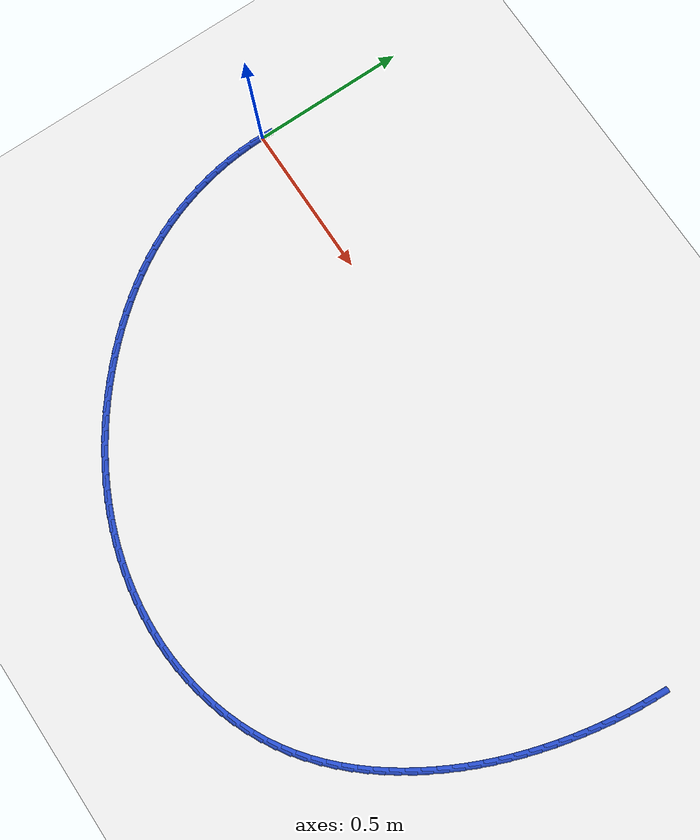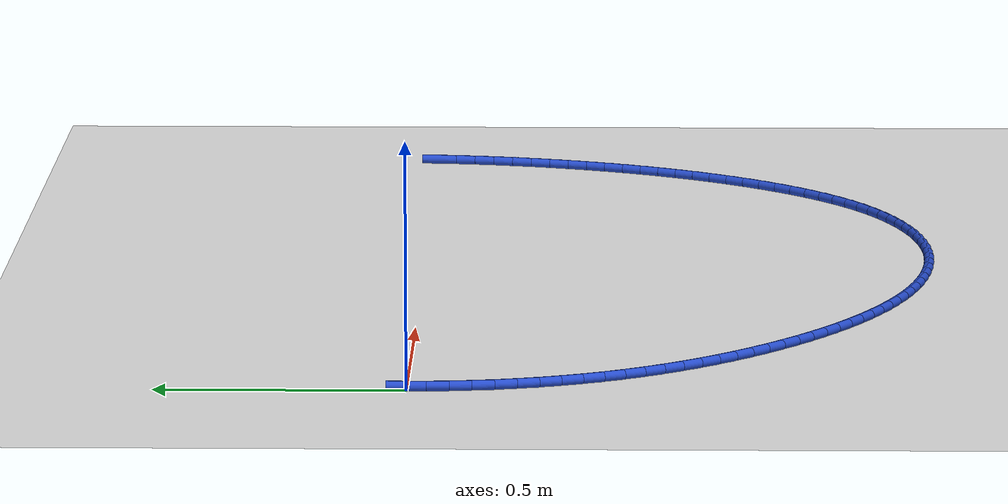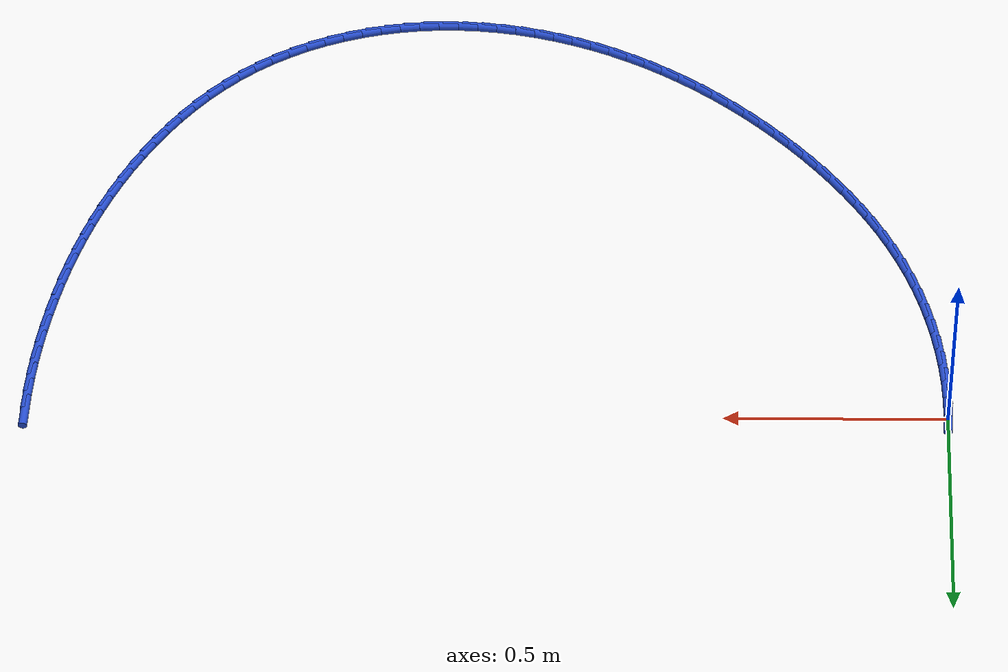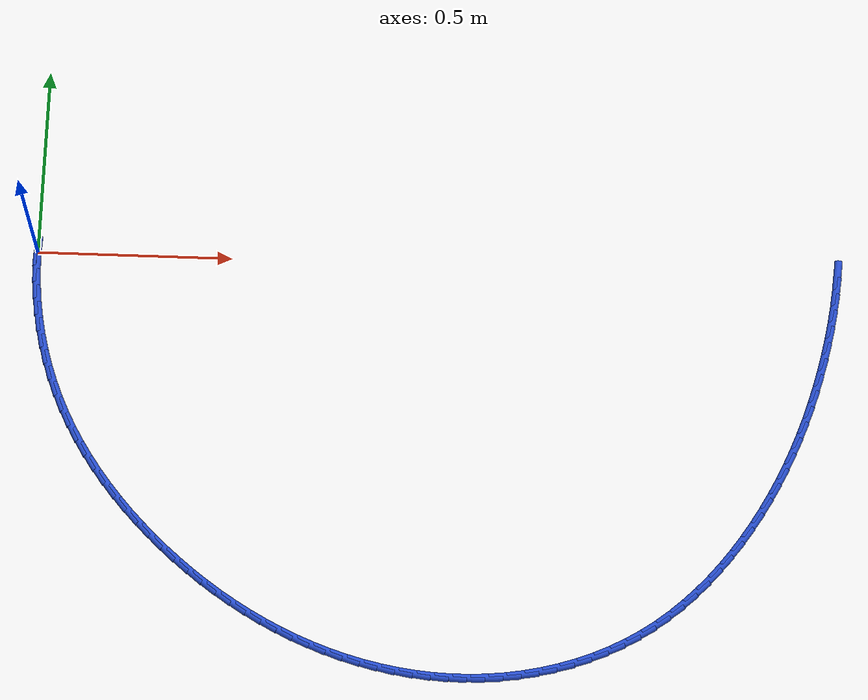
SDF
<sdf version="1.6">
 <world name="default">
  <model name="ground_plane">
   <static>1</static>
   <link name="link">
    <collision name="collision">
     <geometry><plane><normal>0 0 1</normal><size>100 100</size></plane></geometry>
     <surface><friction><ode><mu>100</mu><mu2>50</mu2></ode></friction></surface>
    </collision>
    <visual name="visual">
     <cast_shadows>0</cast_shadows>
     <geometry><plane><normal>0 0 1</normal><size>100 100</size></plane></geometry>
     <material>
      <script><uri>file://media/materials/scripts/gazebo.material</uri><name>Gazebo/WhiteGlow</name></script>
     </material>
    </visual>
   </link>
  </model>
  <model name="line">
   <link name="link_0">
    <pose>1.0408340855860843e-17 2.220446049250313e-16 0.01 0 1.57 1.5392410968493917</pose>
    <collision name="collision">
     <geometry><cylinder><radius>0.01</radius><length>0.08</length></cylinder></geometry>
    </collision>
    <visual name="visual">
     <material>
      <script><name>Gazebo/Blue</name><uri>file://media/materials/scripts/gazebo.material</uri></script>
     </material>
     <geometry><cylinder><radius>0.01</radius><length>0.08</length></cylinder></geometry>
    </visual>
   </link>
   <link name="link_76">
    <pose>2.049236232297777 0.0007225016036778772 0.01 0 1.57 1.4878228461478593</pose>
    <collision name="collision">
     <geometry><cylinder><radius>0.01</radius><length>0.08</length></cylinder></geometry>
    </collision>
    <visual name="visual">
     <material>
      <script><name>Gazebo/Blue</name><uri>file://media/materials/scripts/gazebo.material</uri></script>
     </material>
     <geometry><cylinder><radius>0.01</radius><length>0.08</length></cylinder></geometry>
    </visual>
   </link>
   <link name="link_77">
    <pose>2.045537204961025 -0.04375598280632711 0.01 0 1.57 1.4546801673039733</pose>
    <collision name="collision">
     <geometry><cylinder><radius>0.01</radius><length>0.08</length></cylinder></geometry>
    </collision>
    <visual name="visual">
     <material>
      <script><name>Gazebo/Blue</name><uri>file://media/materials/scripts/gazebo.material</uri></script>
     </material>
     <geometry><cylinder><radius>0.01</radius><length>0.08</length></cylinder></geometry>
    </visual>
   </link>
   <link name="link_78">
    <pose>2.0403593786944727 -0.08814717290857457 0.01 0 1.57 1.4233325325160264</pose>
    <collision name="collision">
     <geometry><cylinder><radius>0.01</radius><length>0.08</length></cylinder></geometry>
    </collision>
    <visual name="visual">
     <material>
      <script><name>Gazebo/Blue</name><uri>file://media/materials/scripts/gazebo.material</uri></script>
     </material>
     <geometry><cylinder><radius>0.01</radius><length>0.08</length></cylinder></geometry>
    </visual>
   </link>
   <link name="link_79">
    <pose>2.033787575861396 -0.13238920395196105 0.01 0 1.57 1.3936852293604927</pose>
    <collision name="collision">
     <geometry><cylinder><radius>0.01</radius><length>0.08</length></cylinder></geometry>
    </collision>
    <visual name="visual">
     <material>
      <script><name>Gazebo/Blue</name><uri>file://media/materials/scripts/gazebo.material</uri></script>
     </material>
     <geometry><cylinder><radius>0.01</radius><length>0.08</length></cylinder></geometry>
    </visual>
   </link>
   <link name="link_80">
    <pose>2.0259066188250703 -0.17642021118538026 0.01 0 1.57 1.3656415647858375</pose>
    <collision name="collision">
     <geometry><cylinder><radius>0.01</radius><length>0.08</length></cylinder></geometry>
    </collision>
    <visual name="visual">
     <material>
      <script><name>Gazebo/Blue</name><uri>file://media/materials/scripts/gazebo.material</uri></script>
     </material>
     <geometry><cylinder><radius>0.01</radius><length>0.08</length></cylinder></geometry>
    </visual>
   </link>
   <link name="link_81">
    <pose>2.0168013299487706 -0.22017832985772867 0.01 0 1.57 1.3390852209340411</pose>
    <collision name="collision">
     <geometry><cylinder><radius>0.01</radius><length>0.08</length></cylinder></geometry>
    </collision>
    <visual name="visual">
     <material>
      <script><name>Gazebo/Blue</name><uri>file://media/materials/scripts/gazebo.material</uri></script>
     </material>
     <geometry><cylinder><radius>0.01</radius><length>0.08</length></cylinder></geometry>
    </visual>
   </link>
   <link name="link_82">
    <pose>2.0065555651133558 -0.26360197127312135 0.01 0 1.57 1.312947510888873</pose>
    <collision name="collision">
     <geometry><cylinder><radius>0.01</radius><length>0.08</length></cylinder></geometry>
    </collision>
    <visual name="visual">
     <material>
      <script><name>Gazebo/Blue</name><uri>file://media/materials/scripts/gazebo.material</uri></script>
     </material>
     <geometry><cylinder><radius>0.01</radius><length>0.08</length></cylinder></geometry>
    </visual>
   </link>
   <link name="link_83">
    <pose>1.995204705727151 -0.3066433924414958 0.01 0 1.57 1.2857810042579194</pose>
    <collision name="collision">
     <geometry><cylinder><radius>0.01</radius><length>0.08</length></cylinder></geometry>
    </collision>
    <visual name="visual">
     <material>
      <script><name>Gazebo/Blue</name><uri>file://media/materials/scripts/gazebo.material</uri></script>
     </material>
     <geometry><cylinder><radius>0.01</radius><length>0.08</length></cylinder></geometry>
    </visual>
   </link>
   <link name="link_84">
    <pose>1.9827140108562167 -0.34927487933384654 0.01 0 1.57 1.25748112309744</pose>
    <collision name="collision">
     <geometry><cylinder><radius>0.01</radius><length>0.08</length></cylinder></geometry>
    </collision>
    <visual name="visual">
     <material>
      <script><name>Gazebo/Blue</name><uri>file://media/materials/scripts/gazebo.material</uri></script>
     </material>
     <geometry><cylinder><radius>0.01</radius><length>0.08</length></cylinder></geometry>
    </visual>
   </link>
   <link name="link_85">
    <pose>1.9690432576498473 -0.3914702837145178 0.01 0 1.57 1.2280629298244672</pose>
    <collision name="collision">
     <geometry><cylinder><radius>0.01</radius><length>0.08</length></cylinder></geometry>
    </collision>
    <visual name="visual">
     <material>
      <script><name>Gazebo/Blue</name><uri>file://media/materials/scripts/gazebo.material</uri></script>
     </material>
     <geometry><cylinder><radius>0.01</radius><length>0.08</length></cylinder></geometry>
    </visual>
   </link>
   <link name="link_86">
    <pose>1.9541522232573374 -0.43320345734785654 0.01 0 1.57 1.197550621876065</pose>
    <collision name="collision">
     <geometry><cylinder><radius>0.01</radius><length>0.08</length></cylinder></geometry>
    </collision>
    <visual name="visual">
     <material>
      <script><name>Gazebo/Blue</name><uri>file://media/materials/scripts/gazebo.material</uri></script>
     </material>
     <geometry><cylinder><radius>0.01</radius><length>0.08</length></cylinder></geometry>
    </visual>
   </link>
   <link name="link_87">
    <pose>1.9380006848279832 -0.47444825199820806 0.01 0 1.57 1.165978458710603</pose>
    <collision name="collision">
     <geometry><cylinder><radius>0.01</radius><length>0.08</length></cylinder></geometry>
    </collision>
    <visual name="visual">
     <material>
      <script><name>Gazebo/Blue</name><uri>file://media/materials/scripts/gazebo.material</uri></script>
     </material>
     <geometry><cylinder><radius>0.01</radius><length>0.08</length></cylinder></geometry>
    </visual>
   </link>
   <link name="link_88">
    <pose>1.9205484195110798 -0.5151785194299175 0.01 0 1.57 1.1333915462277837</pose>
    <collision name="collision">
     <geometry><cylinder><radius>0.01</radius><length>0.08</length></cylinder></geometry>
    </collision>
    <visual name="visual">
     <material>
      <script><name>Gazebo/Blue</name><uri>file://media/materials/scripts/gazebo.material</uri></script>
     </material>
     <geometry><cylinder><radius>0.01</radius><length>0.08</length></cylinder></geometry>
    </visual>
   </link>
   <link name="link_89">
    <pose>1.9017552044559218 -0.5553681114073317 0.01 0 1.57 1.0998464179583414</pose>
    <collision name="collision">
     <geometry><cylinder><radius>0.01</radius><length>0.08</length></cylinder></geometry>
    </collision>
    <visual name="visual">
     <material>
      <script><name>Gazebo/Blue</name><uri>file://media/materials/scripts/gazebo.material</uri></script>
     </material>
     <geometry><cylinder><radius>0.01</radius><length>0.08</length></cylinder></geometry>
    </visual>
   </link>
   <link name="link_90">
    <pose>1.8815808168118036 -0.5949908796947959 0.01 0 1.57 1.0654108947140168</pose>
    <collision name="collision">
     <geometry><cylinder><radius>0.01</radius><length>0.08</length></cylinder></geometry>
    </collision>
    <visual name="visual">
     <material>
      <script><name>Gazebo/Blue</name><uri>file://media/materials/scripts/gazebo.material</uri></script>
     </material>
     <geometry><cylinder><radius>0.01</radius><length>0.08</length></cylinder></geometry>
    </visual>
   </link>
   <link name="link_91">
    <pose>1.8599850482079427 -0.6340206077926513 0.01 0 1.57 1.0299053842386294</pose>
    <collision name="collision">
     <geometry><cylinder><radius>0.01</radius><length>0.08</length></cylinder></geometry>
    </collision>
    <visual name="visual">
     <material>
      <script><name>Gazebo/Blue</name><uri>file://media/materials/scripts/gazebo.material</uri></script>
     </material>
     <geometry><cylinder><radius>0.01</radius><length>0.08</length></cylinder></geometry>
    </visual>
   </link>
   <link name="link_92">
    <pose>1.8369350929634491 -0.6723961800277015 0.01 0 1.57 0.9925915368464495</pose>
    <collision name="collision">
     <geometry><cylinder><radius>0.01</radius><length>0.08</length></cylinder></geometry>
    </collision>
    <visual name="visual">
     <material>
      <script><name>Gazebo/Blue</name><uri>file://media/materials/scripts/gazebo.material</uri></script>
     </material>
     <geometry><cylinder><radius>0.01</radius><length>0.08</length></cylinder></geometry>
    </visual>
   </link>
   <link name="link_93">
    <pose>1.812417589313872 -0.7099648145049517 0.01 0 1.57 0.9531454325912401</pose>
    <collision name="collision">
     <geometry><cylinder><radius>0.01</radius><length>0.08</length></cylinder></geometry>
    </collision>
    <visual name="visual">
     <material>
      <script><name>Gazebo/Blue</name><uri>file://media/materials/scripts/gazebo.material</uri></script>
     </material>
     <geometry><cylinder><radius>0.01</radius><length>0.08</length></cylinder></geometry>
    </visual>
   </link>
   <link name="link_94">
    <pose>1.7864223295518693 -0.7465588598714217 0.01 0 1.57 0.9113439748198031</pose>
    <collision name="collision">
     <geometry><cylinder><radius>0.01</radius><length>0.08</length></cylinder></geometry>
    </collision>
    <visual name="visual">
     <material>
      <script><name>Gazebo/Blue</name><uri>file://media/materials/scripts/gazebo.material</uri></script>
     </material>
     <geometry><cylinder><radius>0.01</radius><length>0.08</length></cylinder></geometry>
    </visual>
   </link>
   <link name="link_95">
    <pose>1.7589391059700987 -0.7820106647741291 0.01 0 1.57 0.8669697278842804</pose>
    <collision name="collision">
     <geometry><cylinder><radius>0.01</radius><length>0.08</length></cylinder></geometry>
    </collision>
    <visual name="visual">
     <material>
      <script><name>Gazebo/Blue</name><uri>file://media/materials/scripts/gazebo.material</uri></script>
     </material>
     <geometry><cylinder><radius>0.01</radius><length>0.08</length></cylinder></geometry>
    </visual>
   </link>
   <link name="link_96">
    <pose>1.7299577108612183 -0.8161525778600913 0.01 0 1.57 0.819817705918496</pose>
    <collision name="collision">
     <geometry><cylinder><radius>0.01</radius><length>0.08</length></cylinder></geometry>
    </collision>
    <visual name="visual">
     <material>
      <script><name>Gazebo/Blue</name><uri>file://media/materials/scripts/gazebo.material</uri></script>
     </material>
     <geometry><cylinder><radius>0.01</radius><length>0.08</length></cylinder></geometry>
    </visual>
   </link>
   <link name="link_97">
    <pose>1.6994679365178853 -0.848816947776328 0.01 0 1.57 0.7697049483709716</pose>
    <collision name="collision">
     <geometry><cylinder><radius>0.01</radius><length>0.08</length></cylinder></geometry>
    </collision>
    <visual name="visual">
     <material>
      <script><name>Gazebo/Blue</name><uri>file://media/materials/scripts/gazebo.material</uri></script>
     </material>
     <geometry><cylinder><radius>0.01</radius><length>0.08</length></cylinder></geometry>
    </visual>
   </link>
   <link name="link_98">
    <pose>1.667459575232759 -0.8798361231698565 0.01 0 1.57 0.7164831499515188</pose>
    <collision name="collision">
     <geometry><cylinder><radius>0.01</radius><length>0.08</length></cylinder></geometry>
    </collision>
    <visual name="visual">
     <material>
      <script><name>Gazebo/Blue</name><uri>file://media/materials/scripts/gazebo.material</uri></script>
     </material>
     <geometry><cylinder><radius>0.01</radius><length>0.08</length></cylinder></geometry>
    </visual>
   </link>
   <link name="link_99">
    <pose>1.6339224192984951 -0.9090424526876957 0.01 0 1.57 0.6600543269737456</pose>
    <collision name="collision">
     <geometry><cylinder><radius>0.01</radius><length>0.08</length></cylinder></geometry>
    </collision>
    <visual name="visual">
     <material>
      <script><name>Gazebo/Blue</name><uri>file://media/materials/scripts/gazebo.material</uri></script>
     </material>
     <geometry><cylinder><radius>0.01</radius><length>0.08</length></cylinder></geometry>
    </visual>
   </link>
   <link name="link_100">
    <pose>1.5988462610077527 -0.9362682849768637 0.01 0 1.57 0.6003915514865957</pose>
    <collision name="collision">
     <geometry><cylinder><radius>0.01</radius><length>0.08</length></cylinder></geometry>
    </collision>
    <visual name="visual">
     <material>
      <script><name>Gazebo/Blue</name><uri>file://media/materials/scripts/gazebo.material</uri></script>
     </material>
     <geometry><cylinder><radius>0.01</radius><length>0.08</length></cylinder></geometry>
    </visual>
   </link>
   <link name="link_101">
    <pose>1.5622209753649672 -0.9613460493879717 0.01 0 1.57 0.5388593259229156</pose>
    <collision name="collision">
     <geometry><cylinder><radius>0.01</radius><length>0.08</length></cylinder></geometry>
    </collision>
    <visual name="visual">
     <material>
      <script><name>Gazebo/Blue</name><uri>file://media/materials/scripts/gazebo.material</uri></script>
     </material>
     <geometry><cylinder><radius>0.01</radius><length>0.08</length></cylinder></geometry>
    </visual>
   </link>
   <link name="link_102">
    <pose>1.5240794287395873 -0.9841501228367202 0.01 0 1.57 0.4789039142690714</pose>
    <collision name="collision">
     <geometry><cylinder><radius>0.01</radius><length>0.08</length></cylinder></geometry>
    </collision>
    <visual name="visual">
     <material>
      <script><name>Gazebo/Blue</name><uri>file://media/materials/scripts/gazebo.material</uri></script>
     </material>
     <geometry><cylinder><radius>0.01</radius><length>0.08</length></cylinder></geometry>
    </visual>
   </link>
   <link name="link_103">
    <pose>1.4845676975414648 -1.00466534361952 0.01 0 1.57 0.42093925634014656</pose>
    <collision name="collision">
     <geometry><cylinder><radius>0.01</radius><length>0.08</length></cylinder></geometry>
    </collision>
    <visual name="visual">
     <material>
      <script><name>Gazebo/Blue</name><uri>file://media/materials/scripts/gazebo.material</uri></script>
     </material>
     <geometry><cylinder><radius>0.01</radius><length>0.08</length></cylinder></geometry>
    </visual>
   </link>
   <link name="link_104">
    <pose>1.4438502730633782 -1.0228945178153797 0.01 0 1.57 0.364770989010184</pose>
    <collision name="collision">
     <geometry><cylinder><radius>0.01</radius><length>0.08</length></cylinder></geometry>
    </collision>
    <visual name="visual">
     <material>
      <script><name>Gazebo/Blue</name><uri>file://media/materials/scripts/gazebo.material</uri></script>
     </material>
     <geometry><cylinder><radius>0.01</radius><length>0.08</length></cylinder></geometry>
    </visual>
   </link>
   <link name="link_105">
    <pose>1.4020916465981048 -1.038840451503309 0.01 0 1.57 0.3101750179361967</pose>
    <collision name="collision">
     <geometry><cylinder><radius>0.01</radius><length>0.08</length></cylinder></geometry>
    </collision>
    <visual name="visual">
     <material>
      <script><name>Gazebo/Blue</name><uri>file://media/materials/scripts/gazebo.material</uri></script>
     </material>
     <geometry><cylinder><radius>0.01</radius><length>0.08</length></cylinder></geometry>
    </visual>
   </link>
   <link name="link_106">
    <pose>1.359456309438425 -1.0525059507623171 0.01 0 1.57 0.25690552353481694</pose>
    <collision name="collision">
     <geometry><cylinder><radius>0.01</radius><length>0.08</length></cylinder></geometry>
    </collision>
    <visual name="visual">
     <material>
      <script><name>Gazebo/Blue</name><uri>file://media/materials/scripts/gazebo.material</uri></script>
     </material>
     <geometry><cylinder><radius>0.01</radius><length>0.08</length></cylinder></geometry>
    </visual>
   </link>
   <link name="link_107">
    <pose>1.316108752877114 -1.063893821671413 0.01 0 1.57 0.20470092172219218</pose>
    <collision name="collision">
     <geometry><cylinder><radius>0.01</radius><length>0.08</length></cylinder></geometry>
    </collision>
    <visual name="visual">
     <material>
      <script><name>Gazebo/Blue</name><uri>file://media/materials/scripts/gazebo.material</uri></script>
     </material>
     <geometry><cylinder><radius>0.01</radius><length>0.08</length></cylinder></geometry>
    </visual>
   </link>
   <link name="link_108">
    <pose>1.2722134682069532 -1.073006870309607 0.01 0 1.57 0.15328801321063026</pose>
    <collision name="collision">
     <geometry><cylinder><radius>0.01</radius><length>0.08</length></cylinder></geometry>
    </collision>
    <visual name="visual">
     <material>
      <script><name>Gazebo/Blue</name><uri>file://media/materials/scripts/gazebo.material</uri></script>
     </material>
     <geometry><cylinder><radius>0.01</radius><length>0.08</length></cylinder></geometry>
    </visual>
   </link>
   <link name="link_109">
    <pose>1.2279349467207203 -1.0798479027559065 0.01 0 1.57 0.10238998257643007</pose>
    <collision name="collision">
     <geometry><cylinder><radius>0.01</radius><length>0.08</length></cylinder></geometry>
    </collision>
    <visual name="visual">
     <material>
      <script><name>Gazebo/Blue</name><uri>file://media/materials/scripts/gazebo.material</uri></script>
     </material>
     <geometry><cylinder><radius>0.01</radius><length>0.08</length></cylinder></geometry>
    </visual>
   </link>
   <link name="link_110">
    <pose>1.1834372311063177 -1.084420011813363 0.01 0 1.57 0.052117473333303466</pose>
    <collision name="collision">
     <geometry><cylinder><radius>0.01</radius><length>0.08</length></cylinder></geometry>
    </collision>
    <visual name="visual">
     <material>
      <script><name>Gazebo/Blue</name><uri>file://media/materials/scripts/gazebo.material</uri></script>
     </material>
     <geometry><cylinder><radius>0.01</radius><length>0.08</length></cylinder></geometry>
    </visual>
   </link>
   <link name="link_111">
    <pose>1.1388540240367888 -1.0867456819861498 0.01 0 1.57 0.0029854417208971034</pose>
    <collision name="collision">
     <geometry><cylinder><radius>0.01</radius><length>0.08</length></cylinder></geometry>
    </collision>
    <visual name="visual">
     <material>
      <script><name>Gazebo/Blue</name><uri>file://media/materials/scripts/gazebo.material</uri></script>
     </material>
     <geometry><cylinder><radius>0.01</radius><length>0.08</length></cylinder></geometry>
    </visual>
   </link>
   <link name="link_112">
    <pose>1.094269919144714 -1.0868787856284285 0.01 0 1.57 -0.04496986044049373</pose>
    <collision name="collision">
     <geometry><cylinder><radius>0.01</radius><length>0.08</length></cylinder></geometry>
    </collision>
    <visual name="visual">
     <material>
      <script><name>Gazebo/Blue</name><uri>file://media/materials/scripts/gazebo.material</uri></script>
     </material>
     <geometry><cylinder><radius>0.01</radius><length>0.08</length></cylinder></geometry>
    </visual>
   </link>
   <link name="link_113">
    <pose>1.0497650325548897 -1.0848760568758453 0.01 0 1.57 -0.09178727896651195</pose>
    <collision name="collision">
     <geometry><cylinder><radius>0.01</radius><length>0.08</length></cylinder></geometry>
    </collision>
    <visual name="visual">
     <material>
      <script><name>Gazebo/Blue</name><uri>file://media/materials/scripts/gazebo.material</uri></script>
     </material>
     <geometry><cylinder><radius>0.01</radius><length>0.08</length></cylinder></geometry>
    </visual>
   </link>
   <link name="link_114">
    <pose>1.0054194803921137 -1.0807942298640447 0.01 0 1.57 -0.13752427889111135</pose>
    <collision name="collision">
     <geometry><cylinder><radius>0.01</radius><length>0.08</length></cylinder></geometry>
    </collision>
    <visual name="visual">
     <material>
      <script><name>Gazebo/Blue</name><uri>file://media/materials/scripts/gazebo.material</uri></script>
     </material>
     <geometry><cylinder><radius>0.01</radius><length>0.08</length></cylinder></geometry>
    </visual>
   </link>
   <link name="link_115">
    <pose>0.961313378781181 -1.074690038728671 0.01 0 1.57 -0.18225402316163522</pose>
    <collision name="collision">
     <geometry><cylinder><radius>0.01</radius><length>0.08</length></cylinder></geometry>
    </collision>
    <visual name="visual">
     <material>
      <script><name>Gazebo/Blue</name><uri>file://media/materials/scripts/gazebo.material</uri></script>
     </material>
     <geometry><cylinder><radius>0.01</radius><length>0.08</length></cylinder></geometry>
    </visual>
   </link>
   <link name="link_116">
    <pose>0.9175268438468894 -1.066620217605371 0.01 0 1.57 -0.22606271803160258</pose>
    <collision name="collision">
     <geometry><cylinder><radius>0.01</radius><length>0.08</length></cylinder></geometry>
    </collision>
    <visual name="visual">
     <material>
      <script><name>Gazebo/Blue</name><uri>file://media/materials/scripts/gazebo.material</uri></script>
     </material>
     <geometry><cylinder><radius>0.01</radius><length>0.08</length></cylinder></geometry>
    </visual>
   </link>
   <link name="link_117">
    <pose>0.874139991714036 -1.056641500629788 0.01 0 1.57 -0.2690472915916321</pose>
    <collision name="collision">
     <geometry><cylinder><radius>0.01</radius><length>0.08</length></cylinder></geometry>
    </collision>
    <visual name="visual">
     <material>
      <script><name>Gazebo/Blue</name><uri>file://media/materials/scripts/gazebo.material</uri></script>
     </material>
     <geometry><cylinder><radius>0.01</radius><length>0.08</length></cylinder></geometry>
    </visual>
   </link>
   <link name="link_118">
    <pose>0.8312329385074164 -1.0448106219375686 0.01 0 1.57 -0.311297195166308</pose>
    <collision name="collision">
     <geometry><cylinder><radius>0.01</radius><length>0.08</length></cylinder></geometry>
    </collision>
    <visual name="visual">
     <material>
      <script><name>Gazebo/Blue</name><uri>file://media/materials/scripts/gazebo.material</uri></script>
     </material>
     <geometry><cylinder><radius>0.01</radius><length>0.08</length></cylinder></geometry>
    </visual>
   </link>
   <link name="link_119">
    <pose>0.7888839482860378 -1.031184478583545 0.01 0 1.57 -0.3526699904663226</pose>
    <collision name="collision">
     <geometry><cylinder><radius>0.01</radius><length>0.08</length></cylinder></geometry>
    </collision>
    <visual name="visual">
     <material>
      <script><name>Gazebo/Blue</name><uri>file://media/materials/scripts/gazebo.material</uri></script>
     </material>
     <geometry><cylinder><radius>0.01</radius><length>0.08</length></cylinder></geometry>
    </visual>
   </link>
   <link name="link_120">
    <pose>0.7471452676798036 -1.0158222562768873 0.01 0 1.57 -0.39301450188713155</pose>
    <collision name="collision">
     <geometry><cylinder><radius>0.01</radius><length>0.08</length></cylinder></geometry>
    </collision>
    <visual name="visual">
     <material>
      <script><name>Gazebo/Blue</name><uri>file://media/materials/scripts/gazebo.material</uri></script>
     </material>
     <geometry><cylinder><radius>0.01</radius><length>0.08</length></cylinder></geometry>
    </visual>
   </link>
   <link name="link_121">
    <pose>0.7060499480135931 -0.9987848292647831 0.01 0 1.57 -0.43233905895975966</pose>
    <collision name="collision">
     <geometry><cylinder><radius>0.01</radius><length>0.08</length></cylinder></geometry>
    </collision>
    <visual name="visual">
     <material>
      <script><name>Gazebo/Blue</name><uri>file://media/materials/scripts/gazebo.material</uri></script>
     </material>
     <geometry><cylinder><radius>0.01</radius><length>0.08</length></cylinder></geometry>
    </visual>
   </link>
   <link name="link_122">
    <pose>0.6656305926482124 -0.9801331112001158 0.01 0 1.57 -0.47066773452963323</pose>
    <collision name="collision">
     <geometry><cylinder><radius>0.01</radius><length>0.08</length></cylinder></geometry>
    </collision>
    <visual name="visual">
     <material>
      <script><name>Gazebo/Blue</name><uri>file://media/materials/scripts/gazebo.material</uri></script>
     </material>
     <geometry><cylinder><radius>0.01</radius><length>0.08</length></cylinder></geometry>
    </visual>
   </link>
   <link name="link_123">
    <pose>0.6259198049444652 -0.9599280157357697 0.01 0 1.57 -0.5080347760303535</pose>
    <collision name="collision">
     <geometry><cylinder><radius>0.01</radius><length>0.08</length></cylinder></geometry>
    </collision>
    <visual name="visual">
     <material>
      <script><name>Gazebo/Blue</name><uri>file://media/materials/scripts/gazebo.material</uri></script>
     </material>
     <geometry><cylinder><radius>0.01</radius><length>0.08</length></cylinder></geometry>
    </visual>
   </link>
   <link name="link_124">
    <pose>0.5869501882631573 -0.9382304565246278 0.01 0 1.57 -0.5444830554800137</pose>
    <collision name="collision">
     <geometry><cylinder><radius>0.01</radius><length>0.08</length></cylinder></geometry>
    </collision>
    <visual name="visual">
     <material>
      <script><name>Gazebo/Blue</name><uri>file://media/materials/scripts/gazebo.material</uri></script>
     </material>
     <geometry><cylinder><radius>0.01</radius><length>0.08</length></cylinder></geometry>
    </visual>
   </link>
   <link name="link_125">
    <pose>0.5487543459650945 -0.9151013472195745 0.01 0 1.57 -0.5800626533729011</pose>
    <collision name="collision">
     <geometry><cylinder><radius>0.01</radius><length>0.08</length></cylinder></geometry>
    </collision>
    <visual name="visual">
     <material>
      <script><name>Gazebo/Blue</name><uri>file://media/materials/scripts/gazebo.material</uri></script>
     </material>
     <geometry><cylinder><radius>0.01</radius><length>0.08</length></cylinder></geometry>
    </visual>
   </link>
   <link name="link_126">
    <pose>0.5113648814110806 -0.8906016014734931 0.01 0 1.57 -0.6148296025324094</pose>
    <collision name="collision">
     <geometry><cylinder><radius>0.01</radius><length>0.08</length></cylinder></geometry>
    </collision>
    <visual name="visual">
     <material>
      <script><name>Gazebo/Blue</name><uri>file://media/materials/scripts/gazebo.material</uri></script>
     </material>
     <geometry><cylinder><radius>0.01</radius><length>0.08</length></cylinder></geometry>
    </visual>
   </link>
   <link name="link_127">
    <pose>0.47481439796192226 -0.8647921329392679 0.01 0 1.57 -0.6488448045697356</pose>
    <collision name="collision">
     <geometry><cylinder><radius>0.01</radius><length>0.08</length></cylinder></geometry>
    </collision>
    <visual name="visual">
     <material>
      <script><name>Gazebo/Blue</name><uri>file://media/materials/scripts/gazebo.material</uri></script>
     </material>
     <geometry><cylinder><radius>0.01</radius><length>0.08</length></cylinder></geometry>
    </visual>
   </link>
   <link name="link_128">
    <pose>0.4391354989784231 -0.8377338552697816 0.01 0 1.57 -0.6821731213130249</pose>
    <collision name="collision">
     <geometry><cylinder><radius>0.01</radius><length>0.08</length></cylinder></geometry>
    </collision>
    <visual name="visual">
     <material>
      <script><name>Gazebo/Blue</name><uri>file://media/materials/scripts/gazebo.material</uri></script>
     </material>
     <geometry><cylinder><radius>0.01</radius><length>0.08</length></cylinder></geometry>
    </visual>
   </link>
   <link name="link_129">
    <pose>0.4043607878213891 -0.8094876821179189 0.01 0 1.57 -0.7148826361818309</pose>
    <collision name="collision">
     <geometry><cylinder><radius>0.01</radius><length>0.08</length></cylinder></geometry>
    </collision>
    <visual name="visual">
     <material>
      <script><name>Gazebo/Blue</name><uri>file://media/materials/scripts/gazebo.material</uri></script>
     </material>
     <geometry><cylinder><radius>0.01</radius><length>0.08</length></cylinder></geometry>
    </visual>
   </link>
   <link name="link_130">
    <pose>0.37052286785162597 -0.7801145271365635 0.01 0 1.57 -0.7470440755599901</pose>
    <collision name="collision">
     <geometry><cylinder><radius>0.01</radius><length>0.08</length></cylinder></geometry>
    </collision>
    <visual name="visual">
     <material>
      <script><name>Gazebo/Blue</name><uri>file://media/materials/scripts/gazebo.material</uri></script>
     </material>
     <geometry><cylinder><radius>0.01</radius><length>0.08</length></cylinder></geometry>
    </visual>
   </link>
   <link name="link_131">
    <pose>0.33765434242993764 -0.7496753039785987 0.01 0 1.57 -0.7788896492252085</pose>
    <collision name="collision">
     <geometry><cylinder><radius>0.01</radius><length>0.08</length></cylinder></geometry>
    </collision>
    <visual name="visual">
     <material>
      <script><name>Gazebo/Blue</name><uri>file://media/materials/scripts/gazebo.material</uri></script>
     </material>
     <geometry><cylinder><radius>0.01</radius><length>0.08</length></cylinder></geometry>
    </visual>
   </link>
   <link name="link_132">
    <pose>0.3057929884202016 -0.718226014010908 0.01 0 1.57 -0.8117137808547171</pose>
    <collision name="collision">
     <geometry><cylinder><radius>0.01</radius><length>0.08</length></cylinder></geometry>
    </collision>
    <visual name="visual">
     <material>
      <script><name>Gazebo/Blue</name><uri>file://media/materials/scripts/gazebo.material</uri></script>
     </material>
     <geometry><cylinder><radius>0.01</radius><length>0.08</length></cylinder></geometry>
    </visual>
   </link>
   <link name="link_133">
    <pose>0.2750161049472994 -0.6857851318710414 0.01 0 1.57 -0.8461599574210182</pose>
    <collision name="collision">
     <geometry><cylinder><radius>0.01</radius><length>0.08</length></cylinder></geometry>
    </collision>
    <visual name="visual">
     <material>
      <script><name>Gazebo/Blue</name><uri>file://media/materials/scripts/gazebo.material</uri></script>
     </material>
     <geometry><cylinder><radius>0.01</radius><length>0.08</length></cylinder></geometry>
    </visual>
   </link>
   <link name="link_134">
    <pose>0.2454192215114665 -0.6523538222971635 0.01 0 1.57 -0.8823078926207711</pose>
    <collision name="collision">
     <geometry><cylinder><radius>0.01</radius><length>0.08</length></cylinder></geometry>
    </collision>
    <visual name="visual">
     <material>
      <script><name>Gazebo/Blue</name><uri>file://media/materials/scripts/gazebo.material</uri></script>
     </material>
     <geometry><cylinder><radius>0.01</radius><length>0.08</length></cylinder></geometry>
    </visual>
   </link>
   <link name="link_135">
    <pose>0.2170979652696681 -0.6179331573015299 0.01 0 1.57 -0.920224491978351</pose>
    <collision name="collision">
     <geometry><cylinder><radius>0.01</radius><length>0.08</length></cylinder></geometry>
    </collision>
    <visual name="visual">
     <material>
      <script><name>Gazebo/Blue</name><uri>file://media/materials/scripts/gazebo.material</uri></script>
     </material>
     <geometry><cylinder><radius>0.01</radius><length>0.08</length></cylinder></geometry>
    </visual>
   </link>
   <link name="link_136">
    <pose>0.19014796337886772 -0.5825242088963933 0.01 0 1.57 -0.9599632619835224</pose>
    <collision name="collision">
     <geometry><cylinder><radius>0.01</radius><length>0.08</length></cylinder></geometry>
    </collision>
    <visual name="visual">
     <material>
      <script><name>Gazebo/Blue</name><uri>file://media/materials/scripts/gazebo.material</uri></script>
     </material>
     <geometry><cylinder><radius>0.01</radius><length>0.08</length></cylinder></geometry>
    </visual>
   </link>
   <link name="link_137">
    <pose>0.1646648429960303 -0.5461280490940085 0.01 0 1.57 -1.001560183467063</pose>
    <collision name="collision">
     <geometry><cylinder><radius>0.01</radius><length>0.08</length></cylinder></geometry>
    </collision>
    <visual name="visual">
     <material>
      <script><name>Gazebo/Blue</name><uri>file://media/materials/scripts/gazebo.material</uri></script>
     </material>
     <geometry><cylinder><radius>0.01</radius><length>0.08</length></cylinder></geometry>
    </visual>
   </link>
   <link name="link_138">
    <pose>0.14074423127812083 -0.5087457499066305 0.01 0 1.57 -1.0450291603119304</pose>
    <collision name="collision">
     <geometry><cylinder><radius>0.01</radius><length>0.08</length></cylinder></geometry>
    </collision>
    <visual name="visual">
     <material>
      <script><name>Gazebo/Blue</name><uri>file://media/materials/scripts/gazebo.material</uri></script>
     </material>
     <geometry><cylinder><radius>0.01</radius><length>0.08</length></cylinder></geometry>
    </visual>
   </link>
   <link name="link_139">
    <pose>0.11848175538210295 -0.4703783833465121 0.01 0 1.57 -1.0903572330543458</pose>
    <collision name="collision">
     <geometry><cylinder><radius>0.01</radius><length>0.08</length></cylinder></geometry>
    </collision>
    <visual name="visual">
     <material>
      <script><name>Gazebo/Blue</name><uri>file://media/materials/scripts/gazebo.material</uri></script>
     </material>
     <geometry><cylinder><radius>0.01</radius><length>0.08</length></cylinder></geometry>
    </visual>
   </link>
   <link name="link_140">
    <pose>0.09797304246494196 -0.431027021425909 0.01 0 1.57 -1.1374726228411352</pose>
    <collision name="collision">
     <geometry><cylinder><radius>0.01</radius><length>0.08</length></cylinder></geometry>
    </collision>
    <visual name="visual">
     <material>
      <script><name>Gazebo/Blue</name><uri>file://media/materials/scripts/gazebo.material</uri></script>
     </material>
     <geometry><cylinder><radius>0.01</radius><length>0.08</length></cylinder></geometry>
    </visual>
   </link>
   <link name="link_141">
    <pose>0.07931294895236828 -0.39069395159256975 0.01 0 1.57 -1.18524441535965</pose>
    <collision name="collision">
     <geometry><cylinder><radius>0.01</radius><length>0.08</length></cylinder></geometry>
    </collision>
    <visual name="visual">
     <material>
      <script><name>Gazebo/Blue</name><uri>file://media/materials/scripts/gazebo.material</uri></script>
     </material>
     <geometry><cylinder><radius>0.01</radius><length>0.08</length></cylinder></geometry>
    </visual>
   </link>
   <link name="link_142">
    <pose>0.06256543940365895 -0.3494301774606517 0.01 0 1.57 -1.2323469507637828</pose>
    <collision name="collision">
     <geometry><cylinder><radius>0.01</radius><length>0.08</length></cylinder></geometry>
    </collision>
    <visual name="visual">
     <material>
      <script><name>Gazebo/Blue</name><uri>file://media/materials/scripts/gazebo.material</uri></script>
     </material>
     <geometry><cylinder><radius>0.01</radius><length>0.08</length></cylinder></geometry>
    </visual>
   </link>
   <link name="link_143">
    <pose>0.04775380247090894 -0.30735084814571606 0.01 0 1.57 -1.278853994697495</pose>
    <collision name="collision">
     <geometry><cylinder><radius>0.01</radius><length>0.08</length></cylinder></geometry>
    </collision>
    <visual name="visual">
     <material>
      <script><name>Gazebo/Blue</name><uri>file://media/materials/scripts/gazebo.material</uri></script>
     </material>
     <geometry><cylinder><radius>0.01</radius><length>0.08</length></cylinder></geometry>
    </visual>
   </link>
   <link name="link_144">
    <pose>0.0348985527113974 -0.26457548748327764 0.01 0 1.57 -1.3249411778942004</pose>
    <collision name="collision">
     <geometry><cylinder><radius>0.01</radius><length>0.08</length></cylinder></geometry>
    </collision>
    <visual name="visual">
     <material>
      <script><name>Gazebo/Blue</name><uri>file://media/materials/scripts/gazebo.material</uri></script>
     </material>
     <geometry><cylinder><radius>0.01</radius><length>0.08</length></cylinder></geometry>
    </visual>
   </link>
   <link name="link_145">
    <pose>0.024020204682404338 -0.22122361930885368 0.01 0 1.57 -1.3707867272445842</pose>
    <collision name="collision">
     <geometry><cylinder><radius>0.01</radius><length>0.08</length></cylinder></geometry>
    </collision>
    <visual name="visual">
     <material>
      <script><name>Gazebo/Blue</name><uri>file://media/materials/scripts/gazebo.material</uri></script>
     </material>
     <geometry><cylinder><radius>0.01</radius><length>0.08</length></cylinder></geometry>
    </visual>
   </link>
   <link name="link_146">
    <pose>0.015139272941209049 -0.17741476745795887 0.01 0 1.57 -1.4165705122322174</pose>
    <collision name="collision">
     <geometry><cylinder><radius>0.01</radius><length>0.08</length></cylinder></geometry>
    </collision>
    <visual name="visual">
     <material>
      <script><name>Gazebo/Blue</name><uri>file://media/materials/scripts/gazebo.material</uri></script>
     </material>
     <geometry><cylinder><radius>0.01</radius><length>0.08</length></cylinder></geometry>
    </visual>
   </link>
   <link name="link_147">
    <pose>0.008276272045091345 -0.1332684557661099 0.01 0 1.57 -1.4624732804298297</pose>
    <collision name="collision">
     <geometry><cylinder><radius>0.01</radius><length>0.08</length></cylinder></geometry>
    </collision>
    <visual name="visual">
     <material>
      <script><name>Gazebo/Blue</name><uri>file://media/materials/scripts/gazebo.material</uri></script>
     </material>
     <geometry><cylinder><radius>0.01</radius><length>0.08</length></cylinder></geometry>
    </visual>
   </link>
   <link name="link_148">
    <pose>0.0034517165513309163 -0.08890420806882346 0.01 0 1.57 -1.5086759497574596</pose>
    <collision name="collision">
     <geometry><cylinder><radius>0.01</radius><length>0.08</length></cylinder></geometry>
    </collision>
    <visual name="visual">
     <material>
      <script><name>Gazebo/Blue</name><uri>file://media/materials/scripts/gazebo.material</uri></script>
     </material>
     <geometry><cylinder><radius>0.01</radius><length>0.08</length></cylinder></geometry>
    </visual>
   </link>
   <link name="link_149">
    <pose>0.00068612101720723 -0.044441548201614216 0.01 0 1.57 -1.5553588242898209</pose>
    <collision name="collision">
     <geometry><cylinder><radius>0.01</radius><length>0.08</length></cylinder></geometry>
    </collision>
    <visual name="visual">
     <material>
      <script><name>Gazebo/Blue</name><uri>file://media/materials/scripts/gazebo.material</uri></script>
     </material>
     <geometry><cylinder><radius>0.01</radius><length>0.08</length></cylinder></geometry>
    </visual>
   </link>
   <link name="link_150">
    <pose>1.734723475976807e-18 4.3021142204224816e-16 0.01 0 1.57 1.5388920561806219</pose>
    <collision name="collision">
     <geometry><cylinder><radius>0.01</radius><length>0.08</length></cylinder></geometry>
    </collision>
    <visual name="visual">
     <material>
      <script><name>Gazebo/Blue</name><uri>file://media/materials/scripts/gazebo.material</uri></script>
     </material>
     <geometry><cylinder><radius>0.01</radius><length>0.08</length></cylinder></geometry>
    </visual>
   </link>
  </model>
 </world>
</sdf>
